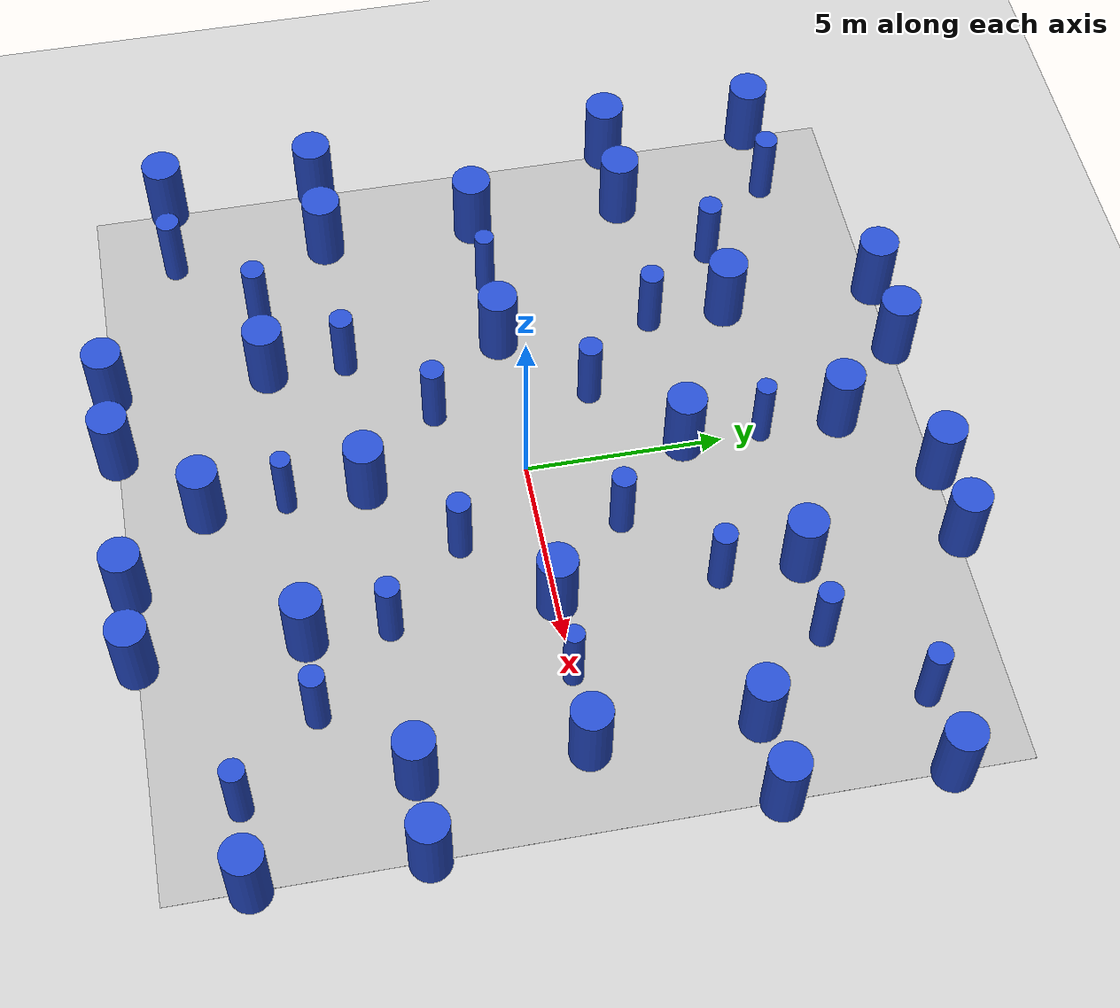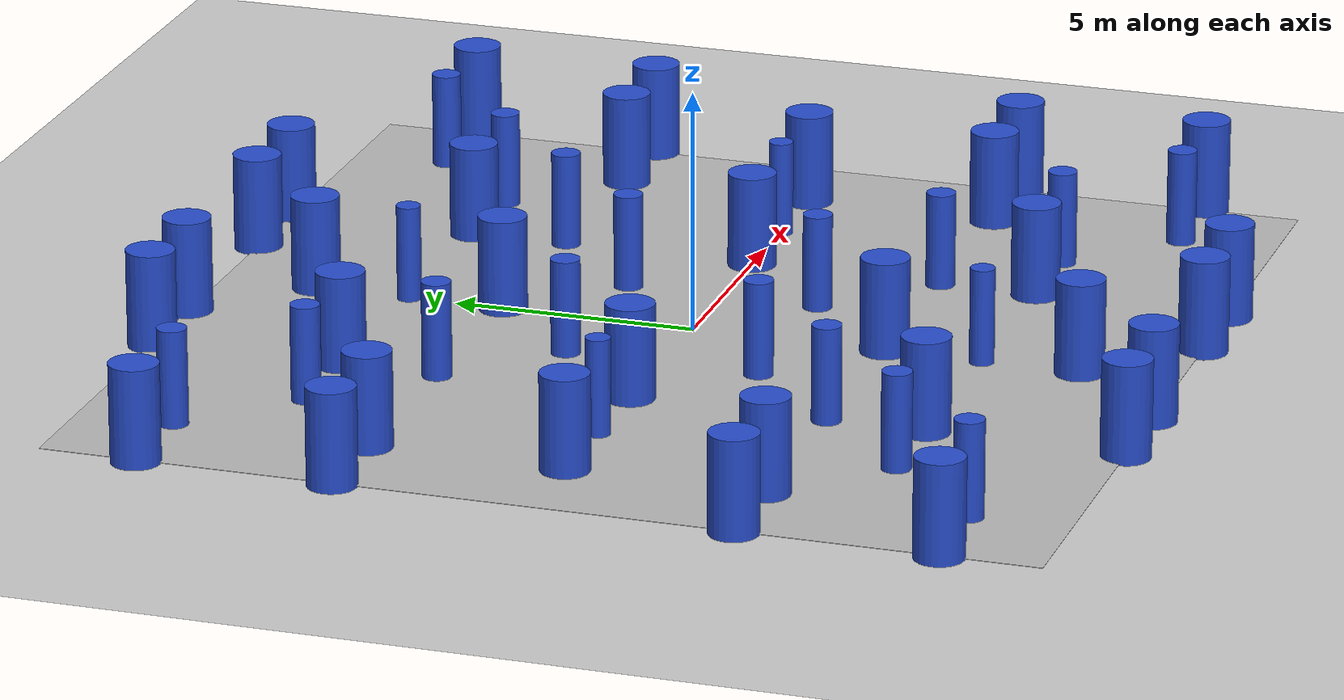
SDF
<?xml version="1.0" ?>
<sdf version='1.5'>
  <world name='default'>
    <!-- 动力学库 -->
    <physics type='ode'>
      <gravity>0 0 -9.8066</gravity>
      <ode>
        <solver>
          <type>quick</type>
          <iters>10</iters>
          <sor>1.3</sor>
          <use_dynamic_moi_rescaling>0</use_dynamic_moi_rescaling>
        </solver>
        <constraints>
          <cfm>0.00001</cfm>
          <erp>0.2</erp>
          <contact_max_correcting_vel>1000</contact_max_correcting_vel>
          <contact_surface_layer>0.01</contact_surface_layer>
        </constraints>
      </ode>
      <max_step_size>0.004</max_step_size>
      <real_time_factor>1.0</real_time_factor>
      <real_time_update_rate>250</real_time_update_rate>
      <magnetic_field>6.0e-6 2.3e-5 -4.2e-5</magnetic_field>
    </physics>

    <!-- 初始视角 -->
    <gui fullscreen='0'>
      <camera name='user_camera'>
        <pose>-13.0 0.0 12.0 0 0.75 0.0</pose>
        <view_controller>orbit</view_controller>
      </camera>
    </gui>

    <!-- 光源 -->
    <light type="directional" name="sun">
      <cast_shadows>false</cast_shadows>
      <pose>0 0 100 0 0 0</pose>
      <diffuse>0.8 0.8 0.8 1</diffuse>
      <specular>0.9 0.9 0.9 1</specular>
      <attenuation>
        <range>1000</range>
        <constant>0.9</constant>
        <linear>0.01</linear>
        <quadratic>0.001</quadratic>
      </attenuation>
      <direction>0.2 0.2 -0.9</direction>
    </light>

    <scene>
      <shadows>0</shadows>
    </scene>

    <!-- A ground plane -->
    <include>
      <uri>model://ground_plane</uri>
    </include>

    <!-- 装饰 -->
    <model name='yundrone_logo'>
      <static>true</static>
      <link name="yundrone_logo">
        <pose frame=''> 0.0 0.0 0.0 0.0 0.0 0.0</pose>
        <visual name="visual">
            <cast_shadows>false</cast_shadows>
            <geometry>
              <box>
                <size>20.0 20.0 0.01</size>
              </box>
            </geometry>
            <material>
              <script>
                <uri>model://yundrone_logo/yundrone_logo.material</uri>
                <name>yundrone_logo</name>
              </script>
            </material>
        </visual>
      </link>
    </model>

    <model name='unit_cylinder_0'>
      <static>1</static>
      <pose>10 8 0.5 0 -0 0</pose>
      <link name='link'>

        <collision name='collision'>
          <geometry>
            <cylinder>
              <radius>0.5</radius>
              <length>3</length>
            </cylinder>
          </geometry>

        </collision>
        <visual name='visual'>
          <geometry>
            <cylinder>
              <radius>0.5</radius>
              <length>3</length>
            </cylinder>
          </geometry>
          <material>
            <script>
              <name>Gazebo/Blue</name>
              <uri>file://media/materials/scripts/gazebo.material</uri>
            </script>
          </material>
        </visual>

      </link>
    </model>
    <model name='unit_cylinder_2'>
      <static>1</static>
      <pose>10 4 0.5 0 -0 0</pose>
      <link name='link'>

        <collision name='collision'>
          <geometry>
            <cylinder>
              <radius>0.5</radius>
              <length>3</length>
            </cylinder>
          </geometry>

        </collision>
        <visual name='visual'>
          <geometry>
            <cylinder>
              <radius>0.5</radius>
              <length>3</length>
            </cylinder>
          </geometry>
          <material>
            <script>
              <name>Gazebo/Blue</name>
              <uri>file://media/materials/scripts/gazebo.material</uri>
            </script>
          </material>
        </visual>

      </link>
    </model>
    <model name='unit_cylinder_5'>
      <static>1</static>
      <pose>10 -8 0.5 0 -0 0</pose>
      <link name='link'>

        <collision name='collision'>
          <geometry>
            <cylinder>
              <radius>0.5</radius>
              <length>3</length>
            </cylinder>
          </geometry>

        </collision>
        <visual name='visual'>
          <geometry>
            <cylinder>
              <radius>0.5</radius>
              <length>3</length>
            </cylinder>
          </geometry>
          <material>
            <script>
              <name>Gazebo/Blue</name>
              <uri>file://media/materials/scripts/gazebo.material</uri>
            </script>
          </material>
        </visual>

      </link>
    </model>
    <model name='unit_cylinder_7'>
      <static>1</static>
      <pose>10 -4 0.5 0 -0 0</pose>
      <link name='link'>

        <collision name='collision'>
          <geometry>
            <cylinder>
              <radius>0.5</radius>
              <length>3</length>
            </cylinder>
          </geometry>

        </collision>
        <visual name='visual'>
          <geometry>
            <cylinder>
              <radius>0.5</radius>
              <length>3</length>
            </cylinder>
          </geometry>
          <material>
            <script>
              <name>Gazebo/Blue</name>
              <uri>file://media/materials/scripts/gazebo.material</uri>
            </script>
          </material>
        </visual>

      </link>
    </model>
    <model name='unit_cylinder_11'>
      <static>1</static>
      <pose>4 10 0.5 0 -0 0</pose>
      <link name='link'>

        <collision name='collision'>
          <geometry>
            <cylinder>
              <radius>0.5</radius>
              <length>3</length>
            </cylinder>
          </geometry>

        </collision>
        <visual name='visual'>
          <geometry>
            <cylinder>
              <radius>0.5</radius>
              <length>3</length>
            </cylinder>
          </geometry>
          <material>
            <script>
              <name>Gazebo/Blue</name>
              <uri>file://media/materials/scripts/gazebo.material</uri>
            </script>
          </material>
        </visual>

      </link>
    </model>
    <model name='unit_cylinder_12'>
      <static>1</static>
      <pose>2 10 0.5 0 -0 0</pose>
      <link name='link'>

        <collision name='collision'>
          <geometry>
            <cylinder>
              <radius>0.5</radius>
              <length>3</length>
            </cylinder>
          </geometry>

        </collision>
        <visual name='visual'>
          <geometry>
            <cylinder>
              <radius>0.5</radius>
              <length>3</length>
            </cylinder>
          </geometry>
          <material>
            <script>
              <name>Gazebo/Blue</name>
              <uri>file://media/materials/scripts/gazebo.material</uri>
            </script>
          </material>
        </visual>

      </link>
    </model>
    <model name='unit_cylinder_16'>
      <static>1</static>
      <pose>-4 10 0.5 0 -0 0</pose>
      <link name='link'>

        <collision name='collision'>
          <geometry>
            <cylinder>
              <radius>0.5</radius>
              <length>3</length>
            </cylinder>
          </geometry>

        </collision>
        <visual name='visual'>
          <geometry>
            <cylinder>
              <radius>0.5</radius>
              <length>3</length>
            </cylinder>
          </geometry>
          <material>
            <script>
              <name>Gazebo/Blue</name>
              <uri>file://media/materials/scripts/gazebo.material</uri>
            </script>
          </material>
        </visual>

      </link>
    </model>
    <model name='unit_cylinder_17'>
      <static>1</static>
      <pose>-2 10 0.5 0 -0 0</pose>
      <link name='link'>

        <collision name='collision'>
          <geometry>
            <cylinder>
              <radius>0.5</radius>
              <length>3</length>
            </cylinder>
          </geometry>

        </collision>
        <visual name='visual'>
          <geometry>
            <cylinder>
              <radius>0.5</radius>
              <length>3</length>
            </cylinder>
          </geometry>
          <material>
            <script>
              <name>Gazebo/Blue</name>
              <uri>file://media/materials/scripts/gazebo.material</uri>
            </script>
          </material>
        </visual>

      </link>
    </model>
    <model name='unit_cylinder_18'>
      <static>1</static>
      <pose>-10 8 0.5 0 -0 0</pose>
      <link name='link'>

        <collision name='collision'>
          <geometry>
            <cylinder>
              <radius>0.5</radius>
              <length>3</length>
            </cylinder>
          </geometry>

        </collision>
        <visual name='visual'>
          <geometry>
            <cylinder>
              <radius>0.5</radius>
              <length>3</length>
            </cylinder>
          </geometry>
          <material>
            <script>
              <name>Gazebo/Blue</name>
              <uri>file://media/materials/scripts/gazebo.material</uri>
            </script>
          </material>
        </visual>

      </link>
    </model>
    <model name='unit_cylinder_20'>
      <static>1</static>
      <pose>-10 4 0.5 0 -0 0</pose>
      <link name='link'>

        <collision name='collision'>
          <geometry>
            <cylinder>
              <radius>0.5</radius>
              <length>3</length>
            </cylinder>
          </geometry>

        </collision>
        <visual name='visual'>
          <geometry>
            <cylinder>
              <radius>0.5</radius>
              <length>3</length>
            </cylinder>
          </geometry>
          <material>
            <script>
              <name>Gazebo/Blue</name>
              <uri>file://media/materials/scripts/gazebo.material</uri>
            </script>
          </material>
        </visual>

      </link>
    </model>
    <model name='unit_cylinder_23'>
      <static>1</static>
      <pose>-10 -8 0.5 0 -0 0</pose>
      <link name='link'>

        <collision name='collision'>
          <geometry>
            <cylinder>
              <radius>0.5</radius>
              <length>3</length>
            </cylinder>
          </geometry>

        </collision>
        <visual name='visual'>
          <geometry>
            <cylinder>
              <radius>0.5</radius>
              <length>3</length>
            </cylinder>
          </geometry>
          <material>
            <script>
              <name>Gazebo/Blue</name>
              <uri>file://media/materials/scripts/gazebo.material</uri>
            </script>
          </material>
        </visual>

      </link>
    </model>
    <model name='unit_cylinder_25'>
      <static>1</static>
      <pose>-10 -4 0.5 0 -0 0</pose>
      <link name='link'>

        <collision name='collision'>
          <geometry>
            <cylinder>
              <radius>0.5</radius>
              <length>3</length>
            </cylinder>
          </geometry>

        </collision>
        <visual name='visual'>
          <geometry>
            <cylinder>
              <radius>0.5</radius>
              <length>3</length>
            </cylinder>
          </geometry>
          <material>
            <script>
              <name>Gazebo/Blue</name>
              <uri>file://media/materials/scripts/gazebo.material</uri>
            </script>
          </material>
        </visual>

      </link>
    </model>
    <model name='unit_cylinder_29'>
      <static>1</static>
      <pose>4 -10 0.5 0 -0 0</pose>
      <link name='link'>

        <collision name='collision'>
          <geometry>
            <cylinder>
              <radius>0.5</radius>
              <length>3</length>
            </cylinder>
          </geometry>

        </collision>
        <visual name='visual'>
          <geometry>
            <cylinder>
              <radius>0.5</radius>
              <length>3</length>
            </cylinder>
          </geometry>
          <material>
            <script>
              <name>Gazebo/Blue</name>
              <uri>file://media/materials/scripts/gazebo.material</uri>
            </script>
          </material>
        </visual>

      </link>
    </model>
    <model name='unit_cylinder_30'>
      <static>1</static>
      <pose>2 -10 0.5 0 -0 0</pose>
      <link name='link'>

        <collision name='collision'>
          <geometry>
            <cylinder>
              <radius>0.5</radius>
              <length>3</length>
            </cylinder>
          </geometry>

        </collision>
        <visual name='visual'>
          <geometry>
            <cylinder>
              <radius>0.5</radius>
              <length>3</length>
            </cylinder>
          </geometry>
          <material>
            <script>
              <name>Gazebo/Blue</name>
              <uri>file://media/materials/scripts/gazebo.material</uri>
            </script>
          </material>
        </visual>

      </link>
    </model>
    <model name='unit_cylinder_33'>
      <static>1</static>
      <pose>-4 -10 0.5 0 -0 0</pose>
      <link name='link'>

        <collision name='collision'>
          <geometry>
            <cylinder>
              <radius>0.5</radius>
              <length>3</length>
            </cylinder>
          </geometry>

        </collision>
        <visual name='visual'>
          <geometry>
            <cylinder>
              <radius>0.5</radius>
              <length>3</length>
            </cylinder>
          </geometry>
          <material>
            <script>
              <name>Gazebo/Blue</name>
              <uri>file://media/materials/scripts/gazebo.material</uri>
            </script>
          </material>
        </visual>

      </link>
    </model>
    <model name='unit_cylinder_34'>
      <static>1</static>
      <pose>-2 -10 0.5 0 -0 0</pose>
      <link name='link'>

        <collision name='collision'>
          <geometry>
            <cylinder>
              <radius>0.5</radius>
              <length>3</length>
            </cylinder>
          </geometry>

        </collision>
        <visual name='visual'>
          <geometry>
            <cylinder>
              <radius>0.5</radius>
              <length>3</length>
            </cylinder>
          </geometry>
          <material>
            <script>
              <name>Gazebo/Blue</name>
              <uri>file://media/materials/scripts/gazebo.material</uri>
            </script>
          </material>
        </visual>

      </link>
    </model>
    <model name='unit_cylinder_35'>
      <static>1</static>
      <pose>8 8 0.5 0 -0 0</pose>
      <link name='link'>

        <collision name='collision'>
          <geometry>
            <cylinder>
              <radius>0.3</radius>
              <length>3</length>
            </cylinder>
          </geometry>

        </collision>
        <visual name='visual'>
          <geometry>
            <cylinder>
              <radius>0.3</radius>
              <length>3</length>
            </cylinder>
          </geometry>
          <material>
            <script>
              <name>Gazebo/Blue</name>
              <uri>file://media/materials/scripts/gazebo.material</uri>
            </script>
          </material>
        </visual>

      </link>
    </model>
    <model name='unit_cylinder_36'>
      <static>1</static>
      <pose>6 6 0.5 0 -0 0</pose>
      <link name='link'>

        <collision name='collision'>
          <geometry>
            <cylinder>
              <radius>0.3</radius>
              <length>3</length>
            </cylinder>
          </geometry>

        </collision>
        <visual name='visual'>
          <geometry>
            <cylinder>
              <radius>0.3</radius>
              <length>3</length>
            </cylinder>
          </geometry>
          <material>
            <script>
              <name>Gazebo/Blue</name>
              <uri>file://media/materials/scripts/gazebo.material</uri>
            </script>
          </material>
        </visual>

      </link>
    </model>
    <model name='unit_cylinder_37'>
      <static>1</static>
      <pose>4 4 0.5 0 -0 0</pose>
      <link name='link'>

        <collision name='collision'>
          <geometry>
            <cylinder>
              <radius>0.3</radius>
              <length>3</length>
            </cylinder>
          </geometry>

        </collision>
        <visual name='visual'>
          <geometry>
            <cylinder>
              <radius>0.3</radius>
              <length>3</length>
            </cylinder>
          </geometry>
          <material>
            <script>
              <name>Gazebo/Blue</name>
              <uri>file://media/materials/scripts/gazebo.material</uri>
            </script>
          </material>
        </visual>

      </link>
    </model>
    <model name='unit_cylinder_38'>
      <static>1</static>
      <pose>2 2 0.5 0 -0 0</pose>
      <link name='link'>

        <collision name='collision'>
          <geometry>
            <cylinder>
              <radius>0.3</radius>
              <length>3</length>
            </cylinder>
          </geometry>

        </collision>
        <visual name='visual'>
          <geometry>
            <cylinder>
              <radius>0.3</radius>
              <length>3</length>
            </cylinder>
          </geometry>
          <material>
            <script>
              <name>Gazebo/Blue</name>
              <uri>file://media/materials/scripts/gazebo.material</uri>
            </script>
          </material>
        </visual>

      </link>
    </model>
    <model name='unit_cylinder_39'>
      <static>1</static>
      <pose>-8 -8 0.5 0 -0 0</pose>
      <link name='link'>

        <collision name='collision'>
          <geometry>
            <cylinder>
              <radius>0.3</radius>
              <length>3</length>
            </cylinder>
          </geometry>

        </collision>
        <visual name='visual'>
          <geometry>
            <cylinder>
              <radius>0.3</radius>
              <length>3</length>
            </cylinder>
          </geometry>
          <material>
            <script>
              <name>Gazebo/Blue</name>
              <uri>file://media/materials/scripts/gazebo.material</uri>
            </script>
          </material>
        </visual>

      </link>
    </model>
    <model name='unit_cylinder_40'>
      <static>1</static>
      <pose>-6 -6 0.5 0 -0 0</pose>
      <link name='link'>

        <collision name='collision'>
          <geometry>
            <cylinder>
              <radius>0.3</radius>
              <length>3</length>
            </cylinder>
          </geometry>

        </collision>
        <visual name='visual'>
          <geometry>
            <cylinder>
              <radius>0.3</radius>
              <length>3</length>
            </cylinder>
          </geometry>
          <material>
            <script>
              <name>Gazebo/Blue</name>
              <uri>file://media/materials/scripts/gazebo.material</uri>
            </script>
          </material>
        </visual>

      </link>
    </model>
    <model name='unit_cylinder_41'>
      <static>1</static>
      <pose>-4 -4 0.5 0 -0 0</pose>
      <link name='link'>

        <collision name='collision'>
          <geometry>
            <cylinder>
              <radius>0.3</radius>
              <length>3</length>
            </cylinder>
          </geometry>

        </collision>
        <visual name='visual'>
          <geometry>
            <cylinder>
              <radius>0.3</radius>
              <length>3</length>
            </cylinder>
          </geometry>
          <material>
            <script>
              <name>Gazebo/Blue</name>
              <uri>file://media/materials/scripts/gazebo.material</uri>
            </script>
          </material>
        </visual>

      </link>
    </model>
    <model name='unit_cylinder_42'>
      <static>1</static>
      <pose>-2 -2 0.5 0 -0 0</pose>
      <link name='link'>

        <collision name='collision'>
          <geometry>
            <cylinder>
              <radius>0.3</radius>
              <length>3</length>
            </cylinder>
          </geometry>

        </collision>
        <visual name='visual'>
          <geometry>
            <cylinder>
              <radius>0.3</radius>
              <length>3</length>
            </cylinder>
          </geometry>
          <material>
            <script>
              <name>Gazebo/Blue</name>
              <uri>file://media/materials/scripts/gazebo.material</uri>
            </script>
          </material>
        </visual>

      </link>
    </model>
    <model name='unit_cylinder_43'>
      <static>1</static>
      <pose>-8 8 0.5 0 -0 0</pose>
      <link name='link'>

        <collision name='collision'>
          <geometry>
            <cylinder>
              <radius>0.3</radius>
              <length>3</length>
            </cylinder>
          </geometry>

        </collision>
        <visual name='visual'>
          <geometry>
            <cylinder>
              <radius>0.3</radius>
              <length>3</length>
            </cylinder>
          </geometry>
          <material>
            <script>
              <name>Gazebo/Blue</name>
              <uri>file://media/materials/scripts/gazebo.material</uri>
            </script>
          </material>
        </visual>

      </link>
    </model>
    <model name='unit_cylinder_44'>
      <static>1</static>
      <pose>-6 6 0.5 0 -0 0</pose>
      <link name='link'>

        <collision name='collision'>
          <geometry>
            <cylinder>
              <radius>0.3</radius>
              <length>3</length>
            </cylinder>
          </geometry>

        </collision>
        <visual name='visual'>
          <geometry>
            <cylinder>
              <radius>0.3</radius>
              <length>3</length>
            </cylinder>
          </geometry>
          <material>
            <script>
              <name>Gazebo/Blue</name>
              <uri>file://media/materials/scripts/gazebo.material</uri>
            </script>
          </material>
        </visual>

      </link>
    </model>
    <model name='unit_cylinder_45'>
      <static>1</static>
      <pose>-4 4 0.5 0 -0 0</pose>
      <link name='link'>

        <collision name='collision'>
          <geometry>
            <cylinder>
              <radius>0.3</radius>
              <length>3</length>
            </cylinder>
          </geometry>

        </collision>
        <visual name='visual'>
          <geometry>
            <cylinder>
              <radius>0.3</radius>
              <length>3</length>
            </cylinder>
          </geometry>
          <material>
            <script>
              <name>Gazebo/Blue</name>
              <uri>file://media/materials/scripts/gazebo.material</uri>
            </script>
          </material>
        </visual>

      </link>
    </model>
    <model name='unit_cylinder_46'>
      <static>1</static>
      <pose>-2 2 0.5 0 -0 0</pose>
      <link name='link'>

        <collision name='collision'>
          <geometry>
            <cylinder>
              <radius>0.3</radius>
              <length>3</length>
            </cylinder>
          </geometry>

        </collision>
        <visual name='visual'>
          <geometry>
            <cylinder>
              <radius>0.3</radius>
              <length>3</length>
            </cylinder>
          </geometry>
          <material>
            <script>
              <name>Gazebo/Blue</name>
              <uri>file://media/materials/scripts/gazebo.material</uri>
            </script>
          </material>
        </visual>

      </link>
    </model>
    <model name='unit_cylinder_47'>
      <static>1</static>
      <pose>8 -8 0.5 0 -0 0</pose>
      <link name='link'>

        <collision name='collision'>
          <geometry>
            <cylinder>
              <radius>0.3</radius>
              <length>3</length>
            </cylinder>
          </geometry>

        </collision>
        <visual name='visual'>
          <geometry>
            <cylinder>
              <radius>0.3</radius>
              <length>3</length>
            </cylinder>
          </geometry>
          <material>
            <script>
              <name>Gazebo/Blue</name>
              <uri>file://media/materials/scripts/gazebo.material</uri>
            </script>
          </material>
        </visual>

      </link>
    </model>
    <model name='unit_cylinder_48'>
      <static>1</static>
      <pose>6 -6 0.5 0 -0 0</pose>
      <link name='link'>

        <collision name='collision'>
          <geometry>
            <cylinder>
              <radius>0.3</radius>
              <length>3</length>
            </cylinder>
          </geometry>

        </collision>
        <visual name='visual'>
          <geometry>
            <cylinder>
              <radius>0.3</radius>
              <length>3</length>
            </cylinder>
          </geometry>
          <material>
            <script>
              <name>Gazebo/Blue</name>
              <uri>file://media/materials/scripts/gazebo.material</uri>
            </script>
          </material>
        </visual>

      </link>
    </model>
    <model name='unit_cylinder_49'>
      <static>1</static>
      <pose>4 -4 0.5 0 -0 0</pose>
      <link name='link'>

        <collision name='collision'>
          <geometry>
            <cylinder>
              <radius>0.3</radius>
              <length>3</length>
            </cylinder>
          </geometry>

        </collision>
        <visual name='visual'>
          <geometry>
            <cylinder>
              <radius>0.3</radius>
              <length>3</length>
            </cylinder>
          </geometry>
          <material>
            <script>
              <name>Gazebo/Blue</name>
              <uri>file://media/materials/scripts/gazebo.material</uri>
            </script>
          </material>
        </visual>

      </link>
    </model>
    <model name='unit_cylinder_50'>
      <static>1</static>
      <pose>2 -2 0.5 0 -0 0</pose>
      <link name='link'>

        <collision name='collision'>
          <geometry>
            <cylinder>
              <radius>0.3</radius>
              <length>3</length>
            </cylinder>
          </geometry>

        </collision>
        <visual name='visual'>
          <geometry>
            <cylinder>
              <radius>0.3</radius>
              <length>3</length>
            </cylinder>
          </geometry>
          <material>
            <script>
              <name>Gazebo/Blue</name>
              <uri>file://media/materials/scripts/gazebo.material</uri>
            </script>
          </material>
        </visual>

      </link>
    </model>
    <model name='unit_cylinder_51'>
      <static>1</static>
      <pose>-4 0 0.5 0 -0 0</pose>
      <link name='link'>

        <collision name='collision'>
          <geometry>
            <cylinder>
              <radius>0.5</radius>
              <length>3</length>
            </cylinder>
          </geometry>

        </collision>
        <visual name='visual'>
          <geometry>
            <cylinder>
              <radius>0.5</radius>
              <length>3</length>
            </cylinder>
          </geometry>
          <material>
            <script>
              <name>Gazebo/Blue</name>
              <uri>file://media/materials/scripts/gazebo.material</uri>
            </script>
          </material>
        </visual>

      </link>
    </model>
    <model name='unit_cylinder_52'>
      <static>1</static>
      <pose>-6 0 0.5 0 -0 0</pose>
      <link name='link'>

        <collision name='collision'>
          <geometry>
            <cylinder>
              <radius>0.25</radius>
              <length>3</length>
            </cylinder>
          </geometry>

        </collision>
        <visual name='visual'>
          <geometry>
            <cylinder>
              <radius>0.25</radius>
              <length>3</length>
            </cylinder>
          </geometry>
          <material>
            <script>
              <name>Gazebo/Blue</name>
              <uri>file://media/materials/scripts/gazebo.material</uri>
            </script>
          </material>
        </visual>

      </link>
    </model>
    <model name='unit_cylinder_53'>
      <static>1</static>
      <pose>-8 0 0.5 0 -0 0</pose>
      <link name='link'>

        <collision name='collision'>
          <geometry>
            <cylinder>
              <radius>0.5</radius>
              <length>3</length>
            </cylinder>
          </geometry>

        </collision>
        <visual name='visual'>
          <geometry>
            <cylinder>
              <radius>0.5</radius>
              <length>3</length>
            </cylinder>
          </geometry>
          <material>
            <script>
              <name>Gazebo/Blue</name>
              <uri>file://media/materials/scripts/gazebo.material</uri>
            </script>
          </material>
        </visual>

      </link>
    </model>
    <model name='unit_cylinder_54'>
      <static>1</static>
      <pose>4 0 0.5 0 -0 0</pose>
      <link name='link'>

        <collision name='collision'>
          <geometry>
            <cylinder>
              <radius>0.5</radius>
              <length>3</length>
            </cylinder>
          </geometry>

        </collision>
        <visual name='visual'>
          <geometry>
            <cylinder>
              <radius>0.5</radius>
              <length>3</length>
            </cylinder>
          </geometry>
          <material>
            <script>
              <name>Gazebo/Blue</name>
              <uri>file://media/materials/scripts/gazebo.material</uri>
            </script>
          </material>
        </visual>

      </link>
    </model>
    <model name='unit_cylinder_55'>
      <static>1</static>
      <pose>6 0 0.5 0 -0 0</pose>
      <link name='link'>

        <collision name='collision'>
          <geometry>
            <cylinder>
              <radius>0.25</radius>
              <length>3</length>
            </cylinder>
          </geometry>

        </collision>
        <visual name='visual'>
          <geometry>
            <cylinder>
              <radius>0.25</radius>
              <length>3</length>
            </cylinder>
          </geometry>
          <material>
            <script>
              <name>Gazebo/Blue</name>
              <uri>file://media/materials/scripts/gazebo.material</uri>
            </script>
          </material>
        </visual>

      </link>
    </model>
    <model name='unit_cylinder_56'>
      <static>1</static>
      <pose>8 0 0.5 0 -0 0</pose>
      <link name='link'>

        <collision name='collision'>
          <geometry>
            <cylinder>
              <radius>0.5</radius>
              <length>3</length>
            </cylinder>
          </geometry>

        </collision>
        <visual name='visual'>
          <geometry>
            <cylinder>
              <radius>0.5</radius>
              <length>3</length>
            </cylinder>
          </geometry>
          <material>
            <script>
              <name>Gazebo/Blue</name>
              <uri>file://media/materials/scripts/gazebo.material</uri>
            </script>
          </material>
        </visual>

      </link>
    </model>
    <model name='unit_cylinder_57'>
      <static>1</static>
      <pose>0 4 0.5 0 -0 0</pose>
      <link name='link'>

        <collision name='collision'>
          <geometry>
            <cylinder>
              <radius>0.5</radius>
              <length>3</length>
            </cylinder>
          </geometry>

        </collision>
        <visual name='visual'>
          <geometry>
            <cylinder>
              <radius>0.5</radius>
              <length>3</length>
            </cylinder>
          </geometry>
          <material>
            <script>
              <name>Gazebo/Blue</name>
              <uri>file://media/materials/scripts/gazebo.material</uri>
            </script>
          </material>
        </visual>

      </link>
    </model>
    <model name='unit_cylinder_58'>
      <static>1</static>
      <pose>0 6 0.5 0 -0 0</pose>
      <link name='link'>

        <collision name='collision'>
          <geometry>
            <cylinder>
              <radius>0.25</radius>
              <length>3</length>
            </cylinder>
          </geometry>

        </collision>
        <visual name='visual'>
          <geometry>
            <cylinder>
              <radius>0.25</radius>
              <length>3</length>
            </cylinder>
          </geometry>
          <material>
            <script>
              <name>Gazebo/Blue</name>
              <uri>file://media/materials/scripts/gazebo.material</uri>
            </script>
          </material>
        </visual>

      </link>
    </model>
    <model name='unit_cylinder_59'>
      <static>1</static>
      <pose>0 8 0.5 0 -0 0</pose>
      <link name='link'>

        <collision name='collision'>
          <geometry>
            <cylinder>
              <radius>0.5</radius>
              <length>3</length>
            </cylinder>
          </geometry>

        </collision>
        <visual name='visual'>
          <geometry>
            <cylinder>
              <radius>0.5</radius>
              <length>3</length>
            </cylinder>
          </geometry>
          <material>
            <script>
              <name>Gazebo/Blue</name>
              <uri>file://media/materials/scripts/gazebo.material</uri>
            </script>
          </material>
        </visual>

      </link>
    </model>
    <model name='unit_cylinder_60'>
      <static>1</static>
      <pose>0 -4 0.5 0 -0 0</pose>
      <link name='link'>

        <collision name='collision'>
          <geometry>
            <cylinder>
              <radius>0.5</radius>
              <length>3</length>
            </cylinder>
          </geometry>

        </collision>
        <visual name='visual'>
          <geometry>
            <cylinder>
              <radius>0.5</radius>
              <length>3</length>
            </cylinder>
          </geometry>
          <material>
            <script>
              <name>Gazebo/Blue</name>
              <uri>file://media/materials/scripts/gazebo.material</uri>
            </script>
          </material>
        </visual>

      </link>
    </model>
    <model name='unit_cylinder_61'>
      <static>1</static>
      <pose>0 -6 0.5 0 -0 0</pose>
      <link name='link'>

        <collision name='collision'>
          <geometry>
            <cylinder>
              <radius>0.25</radius>
              <length>3</length>
            </cylinder>
          </geometry>

        </collision>
        <visual name='visual'>
          <geometry>
            <cylinder>
              <radius>0.25</radius>
              <length>3</length>
            </cylinder>
          </geometry>
          <material>
            <script>
              <name>Gazebo/Blue</name>
              <uri>file://media/materials/scripts/gazebo.material</uri>
            </script>
          </material>
        </visual>

      </link>
    </model>
    <model name='unit_cylinder_62'>
      <static>1</static>
      <pose>0 -8 0.5 0 -0 0</pose>
      <link name='link'>

        <collision name='collision'>
          <geometry>
            <cylinder>
              <radius>0.5</radius>
              <length>3</length>
            </cylinder>
          </geometry>

        </collision>
        <visual name='visual'>
          <geometry>
            <cylinder>
              <radius>0.5</radius>
              <length>3</length>
            </cylinder>
          </geometry>
          <material>
            <script>
              <name>Gazebo/Blue</name>
              <uri>file://media/materials/scripts/gazebo.material</uri>
            </script>
          </material>
        </visual>

      </link>
    </model>
    <model name='unit_cylinder_63'>
      <static>1</static>
      <pose>4 6 0.5 0 -0 0</pose>
      <link name='link'>

        <collision name='collision'>
          <geometry>
            <cylinder>
              <radius>0.5</radius>
              <length>3</length>
            </cylinder>
          </geometry>

        </collision>
        <visual name='visual'>
          <geometry>
            <cylinder>
              <radius>0.5</radius>
              <length>3</length>
            </cylinder>
          </geometry>
          <material>
            <script>
              <name>Gazebo/Blue</name>
              <uri>file://media/materials/scripts/gazebo.material</uri>
            </script>
          </material>
        </visual>

      </link>
    </model>
    <model name='unit_cylinder_64'>
      <static>1</static>
      <pose>-4 6 0.5 0 -0 0</pose>
      <link name='link'>

        <collision name='collision'>
          <geometry>
            <cylinder>
              <radius>0.5</radius>
              <length>3</length>
            </cylinder>
          </geometry>

        </collision>
        <visual name='visual'>
          <geometry>
            <cylinder>
              <radius>0.5</radius>
              <length>3</length>
            </cylinder>
          </geometry>
          <material>
            <script>
              <name>Gazebo/Blue</name>
              <uri>file://media/materials/scripts/gazebo.material</uri>
            </script>
          </material>
        </visual>

      </link>
    </model>
    <model name='unit_cylinder_65'>
      <static>1</static>
      <pose>4 -6 0.5 0 -0 0</pose>
      <link name='link'>

        <collision name='collision'>
          <geometry>
            <cylinder>
              <radius>0.5</radius>
              <length>3</length>
            </cylinder>
          </geometry>

        </collision>
        <visual name='visual'>
          <geometry>
            <cylinder>
              <radius>0.5</radius>
              <length>3</length>
            </cylinder>
          </geometry>
          <material>
            <script>
              <name>Gazebo/Blue</name>
              <uri>file://media/materials/scripts/gazebo.material</uri>
            </script>
          </material>
        </visual>

      </link>
    </model>
    <model name='unit_cylinder_66'>
      <static>1</static>
      <pose>-4 -6 0.5 0 -0 0</pose>
      <link name='link'>

        <collision name='collision'>
          <geometry>
            <cylinder>
              <radius>0.5</radius>
              <length>3</length>
            </cylinder>
          </geometry>

        </collision>
        <visual name='visual'>
          <geometry>
            <cylinder>
              <radius>0.5</radius>
              <length>3</length>
            </cylinder>
          </geometry>
          <material>
            <script>
              <name>Gazebo/Blue</name>
              <uri>file://media/materials/scripts/gazebo.material</uri>
            </script>
          </material>
        </visual>

      </link>
    </model>
    <model name='unit_cylinder_67'>
      <static>1</static>
      <pose>8 4 0.5 0 -0 0</pose>
      <link name='link'>

        <collision name='collision'>
          <geometry>
            <cylinder>
              <radius>0.5</radius>
              <length>3</length>
            </cylinder>
          </geometry>

        </collision>
        <visual name='visual'>
          <geometry>
            <cylinder>
              <radius>0.5</radius>
              <length>3</length>
            </cylinder>
          </geometry>
          <material>
            <script>
              <name>Gazebo/Blue</name>
              <uri>file://media/materials/scripts/gazebo.material</uri>
            </script>
          </material>
        </visual>

      </link>
    </model>
    <model name='unit_cylinder_68'>
      <static>1</static>
      <pose>-8 4 0.5 0 -0 0</pose>
      <link name='link'>

        <collision name='collision'>
          <geometry>
            <cylinder>
              <radius>0.5</radius>
              <length>3</length>
            </cylinder>
          </geometry>

        </collision>
        <visual name='visual'>
          <geometry>
            <cylinder>
              <radius>0.5</radius>
              <length>3</length>
            </cylinder>
          </geometry>
          <material>
            <script>
              <name>Gazebo/Blue</name>
              <uri>file://media/materials/scripts/gazebo.material</uri>
            </script>
          </material>
        </visual>

      </link>
    </model>
    <model name='unit_cylinder_69'>
      <static>1</static>
      <pose>8 -4 0.5 0 -0 0</pose>
      <link name='link'>

        <collision name='collision'>
          <geometry>
            <cylinder>
              <radius>0.5</radius>
              <length>3</length>
            </cylinder>
          </geometry>

        </collision>
        <visual name='visual'>
          <geometry>
            <cylinder>
              <radius>0.5</radius>
              <length>3</length>
            </cylinder>
          </geometry>
          <material>
            <script>
              <name>Gazebo/Blue</name>
              <uri>file://media/materials/scripts/gazebo.material</uri>
            </script>
          </material>
        </visual>

      </link>
    </model>
    <model name='unit_cylinder_70'>
      <static>1</static>
      <pose>-8 -4 0.5 0 -0 0</pose>
      <link name='link'>

        <collision name='collision'>
          <geometry>
            <cylinder>
              <radius>0.5</radius>
              <length>3</length>
            </cylinder>
          </geometry>

        </collision>
        <visual name='visual'>
          <geometry>
            <cylinder>
              <radius>0.5</radius>
              <length>3</length>
            </cylinder>
          </geometry>
          <material>
            <script>
              <name>Gazebo/Blue</name>
              <uri>file://media/materials/scripts/gazebo.material</uri>
            </script>
          </material>
        </visual>

      </link>
    </model>
  </world>
</sdf>
